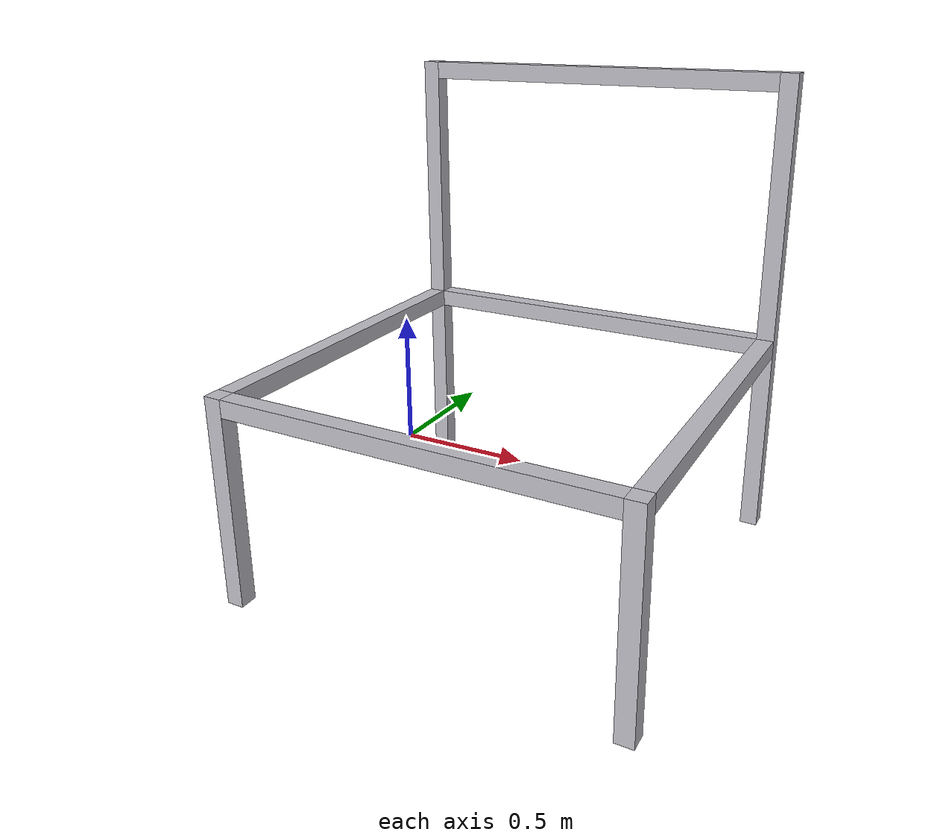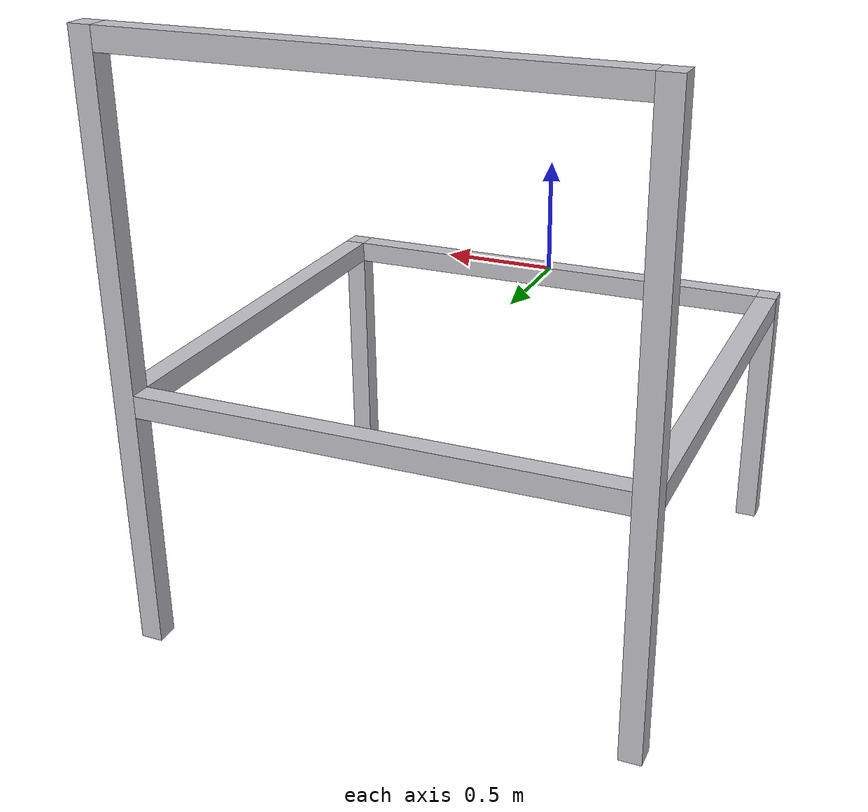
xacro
<?xml version="1.0"?>
<robot name="frame"
		 xmlns:xacro="http://www.ros.org/wiki/xacro">
  <xacro:include filename="$(find agni_description)/urdf/frame-half.urdf.xacro"/>

  <xacro:frame-half prefix="kuka" thickness="0.09" width="1.92" depth="1.82"
						  height="1.26" tableHeight="1.00"/>

</robot>

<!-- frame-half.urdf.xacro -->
<root xmlns:xacro="http://www.ros.org/wiki/xacro"
      xmlns:sensor="http://playerstage.sourceforge.net/gazebo/xmlschema/#sensor"
      xmlns:controller="http://playerstage.sourceforge.net/gazebo/xmlschema/#controller"
      xmlns:interface="http://playerstage.sourceforge.net/gazebo/xmlschema/#interface">

<xacro:include filename="$(find agni_description)/urdf/util.urdf.xacro"/>
<xacro:include filename="$(find agni_description)/urdf/materials.urdf.xacro"/>

<xacro:macro name="bar" params="thickness len *origin">
	 <visual>
		<xacro:insert_block name="origin"/>
		<geometry><box size="${thickness} ${thickness} ${len}"/></geometry>
		<material name="Silver"/>
	 </visual>
</xacro:macro>

<xacro:macro name="frame-half" params="prefix thickness width depth height tableHeight">
  <link name="${prefix}_frame">
	 <!-- horizontal front bar-->
	 <xacro:bar thickness="${thickness}" len="${width}">
		<origin xyz="0 ${-thickness/2} ${-thickness/2}" rpy="0 ${-M_PI/2} 0"/>
	 </xacro:bar>
	 <!-- horizontal rear bar -->
	 <xacro:bar thickness="${thickness}" len="${width}">
		<origin xyz="0 ${depth+thickness/2} ${-thickness/2}" rpy="0 ${-M_PI/2} 0"/>
	 </xacro:bar>
	 <!-- horizontal rear bar top -->
	 <xacro:bar thickness="${thickness}" len="${width}">
		<origin xyz="0 ${depth+thickness/2} ${height+thickness/2}" rpy="0 ${-M_PI/2} 0"/>
	 </xacro:bar>

	 <!-- left front pole -->
	 <xacro:bar thickness="${thickness}" len="${thickness+tableHeight}">
		<origin xyz="${-(width+thickness)/2} ${-thickness/2} ${-(thickness+tableHeight)/2}"/>
	 </xacro:bar>
	 <!-- right front pole -->
	 <xacro:bar thickness="${thickness}" len="${thickness+tableHeight}">
		<origin xyz="${+(width+thickness)/2} ${-thickness/2} ${-(thickness+tableHeight)/2}"/>
	 </xacro:bar>

	 <!-- left rear pole -->
	 <xacro:bar thickness="${thickness}" len="${height+2*thickness+tableHeight}">
		<origin xyz="${-(width+thickness)/2} ${depth+thickness/2} ${(height-tableHeight)/2}"/>
	 </xacro:bar>
	 <!-- right rear pole -->
	 <xacro:bar thickness="${thickness}" len="${height+2*thickness+tableHeight}">
		<origin xyz="${+(width+thickness)/2} ${depth+thickness/2} ${(height-tableHeight)/2}"/>
	 </xacro:bar>

	 <!-- left side bottom -->
	 <xacro:bar thickness="${thickness}" len="${depth}">
		<origin xyz="${-(width+thickness)/2} ${depth/2} ${-thickness/2}"
				  rpy="${-M_PI/2} 0 0"/>
	 </xacro:bar>
	 <!-- right side bottom -->
	 <xacro:bar thickness="${thickness}" len="${depth}">
		<origin xyz="${+(width+thickness)/2} ${depth/2} ${-thickness/2}"
				  rpy="${-M_PI/2} 0 0"/>
	 </xacro:bar>

  </link>

  <gazebo reference="${prefix}_frame">
      <material value="kuka-lwr.material"/>
  </gazebo>
</xacro:macro>

</root>

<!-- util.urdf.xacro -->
<robot xmlns:xacro="http://www.ros.org/wiki/xacro">
  <property name="M_PI" value="3.1415926535897931"/>

  <!--
		Little helper macro to define the inertia matrix needed
		for links.
  -->
  <macro name="cuboid_inertia_def" params="width height length mass">
    <inertia ixx="${mass * (height * height + length * length) / 12)}"
             iyy="${mass * (width * width + length * length) / 12)}"
             izz="${mass * (width * width + height * height) / 12)}"
             ixy="0" iyz="0" ixz="0"/>
  </macro>

  <!-- length is along the y-axis! -->
  <macro name="cylinder_inertia_def" params="radius length mass">
    <inertia ixx="${mass * (3 * radius * radius + length * length) / 12)}"
             iyy="${mass * radius* radius / 2)}"
             izz="${mass * (3 * radius * radius + length * length) / 12)}"
             ixy="0" iyz="0" ixz="0"/>
  </macro>

</robot>
